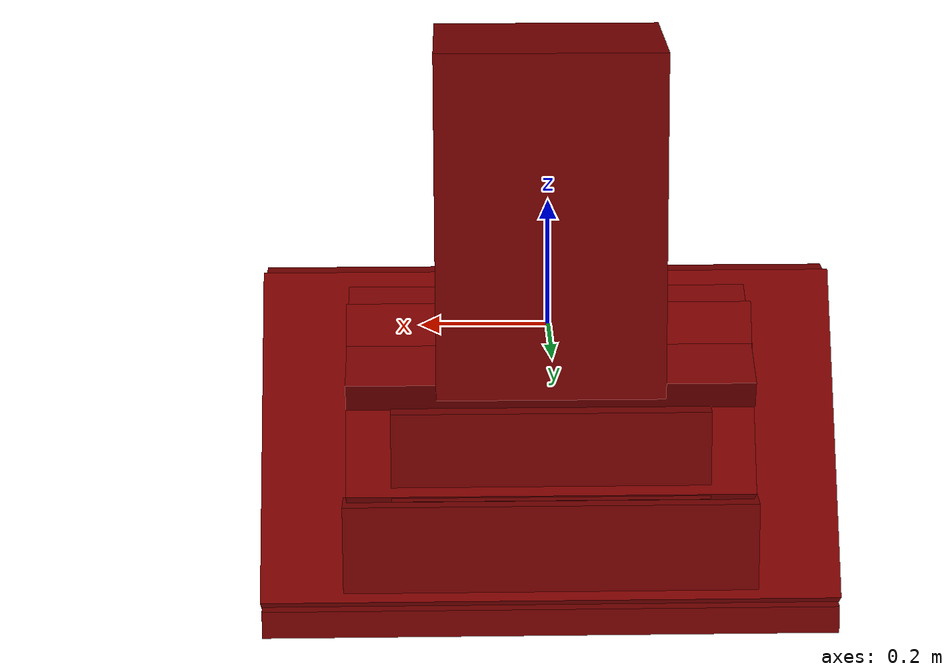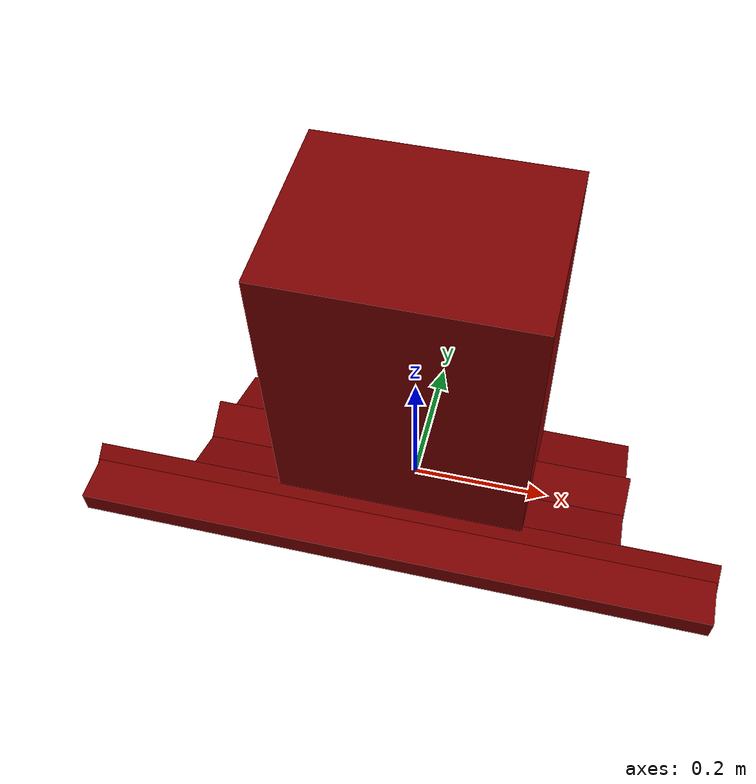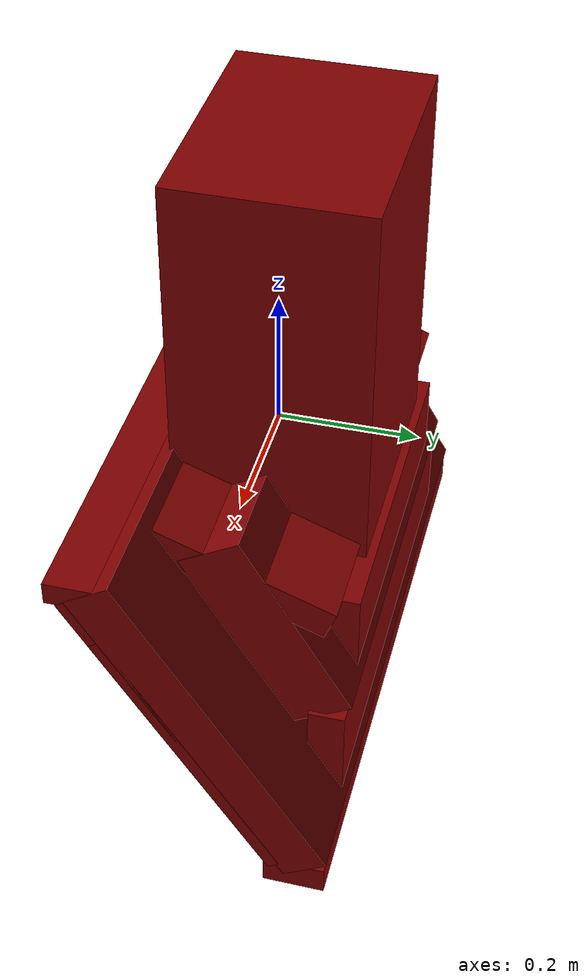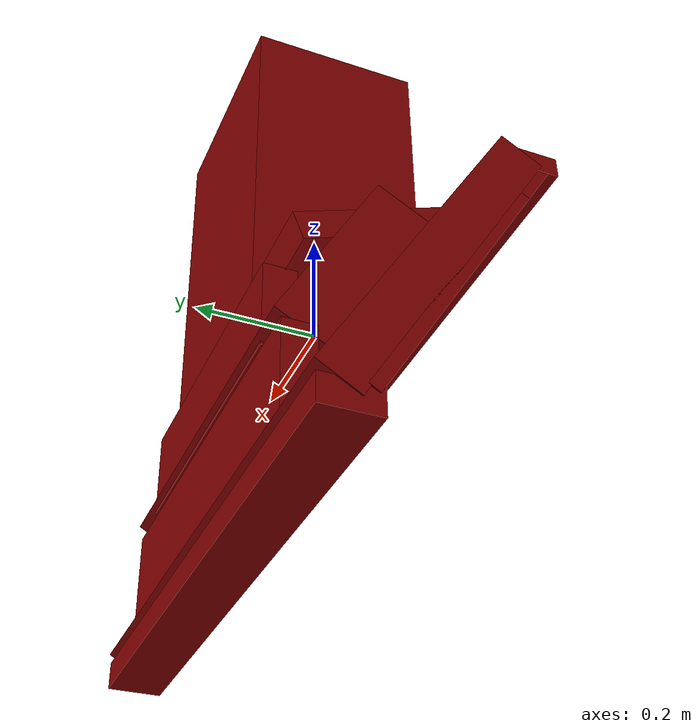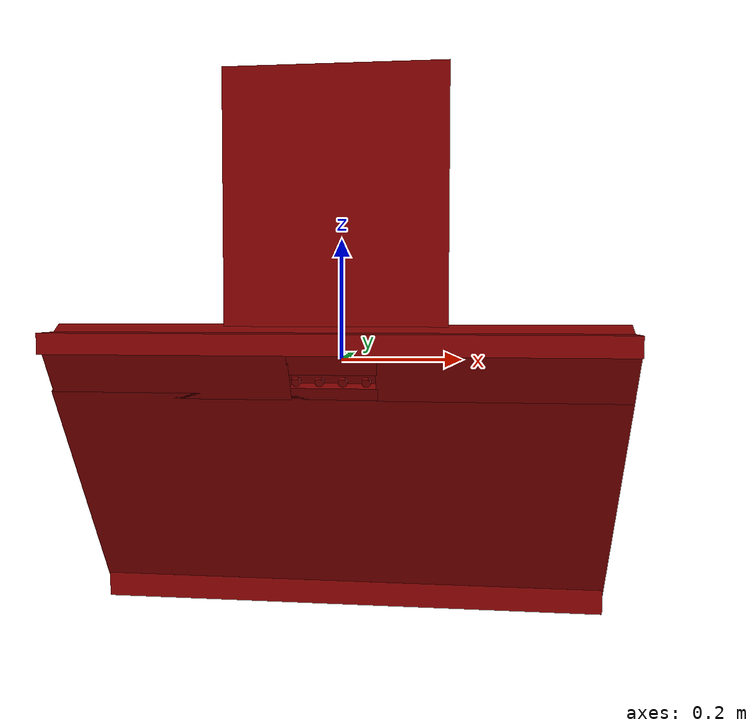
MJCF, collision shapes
<?xml version='1.0' encoding='UTF-8'?>
<mujoco model="model">
  <compiler angle="radian"/>
  <asset>
    <mesh file="visuals/Body001.obj" name="Body001_vis"/>
    <mesh file="visuals/Button001.obj" name="Button001_vis"/>
    <mesh file="visuals/Button002.obj" name="Button002_vis"/>
    <mesh file="visuals/Button003.obj" name="Button003_vis"/>
    <mesh file="visuals/Button004.obj" name="Button004_vis"/>
    <texture file="visuals/T_BC001.png" name="Body001_material" type="2d"/>
    <material name="Body001_material" rgba="1 1 1 1.0" texture="Body001_material" shininess="0.4472135901451111" specular="3"/>
    <texture file="visuals/T_BC001.png" name="Button001_material" type="2d"/>
    <material name="Button001_material" rgba="1 1 1 1.0" texture="Button001_material" shininess="0.4472135901451111" specular="0.3103448502657381"/>
    <texture file="visuals/T_BC001.png" name="Button002_material" type="2d"/>
    <material name="Button002_material" rgba="1 1 1 1.0" texture="Button002_material" shininess="0.4472135901451111" specular="0.3103448502657381"/>
    <texture file="visuals/T_BC001.png" name="Button003_material" type="2d"/>
    <material name="Button003_material" rgba="1 1 1 1.0" texture="Button003_material" shininess="0.4472135901451111" specular="0.3103448502657381"/>
    <texture file="visuals/T_BC001.png" name="Button004_material" type="2d"/>
    <material name="Button004_material" rgba="1 1 1 1.0" texture="Button004_material" shininess="0.4472135901451111" specular="0.3103448502657381"/>
  </asset>
  <default>
    <default class="visual">
      <geom conaffinity="0" contype="0" group="1" type="mesh"/>
    </default>
    <default class="collision">
      <geom group="0" rgba="0.5 0 0 0.5"/>
    </default>
    <default class="spawn">
      <geom group="0" rgba="1 1 1 0.5" contype="0" conaffinity="0"/>
      <site group="0" rgba="1 1 1 0.5"/>
    </default>
    <default class="region">
      <geom group="1" conaffinity="0" contype="0" rgba="0 1 0 0"/>
    </default>
  </default>
  <worldbody>
    <body>
      <body name="object">
        <geom mesh="Body001_vis" type="mesh" solimp="0.998 0.998 0.001" solref="0.001 1" density="100" friction="0.95 0.3 0.1" class="visual" material="Body001_material"/>
        <geom class="collision" type="box" pos="-5.93418246479909e-17 0.03151153773069382 0.19332821667194366" size="0.176690474152565 0.13624289631843567 0.26880136132240295" quat="1.0 0.0 0.0 0.0"/>
        <geom class="collision" type="box" pos="-1.4352711240406062e-16 0.012289568781852722 -0.18580864369869232" size="0.45237573981285095 0.03505275025963783 0.26880133152008057" quat="0.9622051119804382 0.2723257839679718 6.046847772951262e-17 2.4051126544262927e-24"/>
        <geom class="collision" type="box" pos="-2.4755229406499022e-17 -0.14540709555149078 0.032627254724502563" size="0.4505537450313568 0.03928837552666664 0.016232356429100037" quat="1.0 0.0 0.0 0.0"/>
        <geom class="collision" type="box" pos="7.876066376872657e-17 0.1371912807226181 -0.4335668981075287" size="0.4505537450313568 0.043209318071603775 0.02168448269367218" quat="1.0 0.0 0.0 0.0"/>
        <geom class="collision" type="box" pos="3.6544422563564036e-17 0.15029743313789368 -0.31398478150367737" size="0.3235146701335907 0.02581067383289337 0.07011168450117111" quat="1.0 0.0 0.0 0.0"/>
        <geom class="collision" type="box" pos="1.907924673769693e-17 0.01750720664858818 -0.023787058889865875" size="0.3159329295158386 0.14306649565696716 0.023090658709406853" quat="0.9833680391311646 -0.18162398040294647 4.032861835603898e-17 4.285841066159591e-24"/>
        <geom class="collision" type="box" pos="-1.3366230200254103e-16 -0.006913531571626663 -0.23023578524589539" size="0.45237573981285095 0.00919825304299593 0.22159917652606964" quat="0.9622051119804382 0.2723257839679718 6.046847772951262e-17 2.4051126544262927e-24"/>
        <geom class="collision" type="box" pos="3.6544422563564036e-17 0.15029743313789368 -0.16468895971775055" size="0.24695998430252075 0.02581067383289337 0.07011168450117111" quat="1.0 0.0 0.0 0.0"/>
        <geom class="collision" type="box" pos="4.5214678281438656e-17 0.0650784969329834 -0.11487872898578644" size="0.31697890162467957 0.047649867832660675 0.15433849394321442" quat="0.9659258127212524 0.2588191032409668 5.746938552619136e-17 -2.406693728895582e-24"/>
        <geom class="collision" type="box" pos="-0.25682392716407776 -0.13952259719371796 -0.014728546142578125" size="0.19241711497306824 0.009198252111673355 0.04253089800477028" quat="0.9622051119804382 0.2723257839679718 6.046847772951262e-17 2.4051126544262927e-24"/>
        <geom class="collision" type="box" pos="0.2598109543323517 -0.13952259719371796 -0.014728546142578125" size="0.19241711497306824 0.009198252111673355 0.04253089800477028" quat="0.9622051119804382 0.2723257839679718 6.046847772951262e-17 2.4051126544262927e-24"/>
        <geom class="collision" type="box" pos="0.0016868007369339466 -0.1521025151014328 0.005715498235076666" size="0.0680648609995842 0.009198252111673355 0.01787397637963295" quat="0.9622051119804382 0.2723257839679718 6.046847772951262e-17 2.4051126544262927e-24"/>
        <geom class="collision" type="box" pos="0.0016868007369339466 -0.1236455887556076 -0.04053075984120369" size="0.0680648609995842 0.00919825118035078 0.01106310822069645" quat="0.9622051119804382 0.2723257839679718 6.046847772951262e-17 2.4051126544262927e-24"/>
        <body name="Button001">
          <joint axis="-2.9748352972942664e-17 0.8660253286361694 0.5000001192092896" pos="-0.05396651849150658 -0.14378201961517334 -0.025446580722928047" limited="true" name="Button001_joint" range="0.0 0.005" type="slide" damping="1" frictionloss="1" armature=".01" stiffness="0.05"/>
          <geom mesh="Button001_vis" type="mesh" solimp="0.998 0.998 0.001" solref="0.001 1" density="100" friction="0.95 0.3 0.1" class="visual" material="Button001_material"/>
          <geom class="collision" type="cylinder" pos="-0.053966522216796875 -0.14378196001052856 -0.025446653366088867" size="0.007079710252583027 0.0029501880053430796" quat="0.8660253882408142 -0.5 1.1102230246251565e-16 3.620239677379362e-24"/>
        </body>
        <body name="Button002">
          <joint axis="-2.9748352972942664e-17 0.8660253286361694 0.5000001192092896" pos="-0.018068788573145866 -0.14378347992897034 -0.025447580963373184" limited="true" name="Button002_joint" range="0.0 0.005" type="slide" damping="1" frictionloss="1" armature=".01" stiffness="0.05"/>
          <geom mesh="Button002_vis" type="mesh" solimp="0.998 0.998 0.001" solref="0.001 1" density="100" friction="0.95 0.3 0.1" class="visual" material="Button002_material"/>
          <geom class="collision" type="cylinder" pos="-0.018068790435791016 -0.14378345012664795 -0.025447607040405273" size="0.007079710252583027 0.0029501880053430796" quat="0.8660253882408142 -0.5 1.1102230246251565e-16 3.620239677379362e-24"/>
        </body>
        <body name="Button003">
          <joint axis="-2.9748352972942664e-17 0.8660253286361694 0.5000001192092896" pos="0.017827987670898438 -0.14378559589385986 -0.025448834523558617" limited="true" name="Button003_joint" range="0.0 0.005" type="slide" damping="1" frictionloss="1" armature=".01" stiffness="0.05"/>
          <geom mesh="Button003_vis" type="mesh" solimp="0.998 0.998 0.001" solref="0.001 1" density="100" friction="0.95 0.3 0.1" class="visual" material="Button003_material"/>
          <geom class="collision" type="cylinder" pos="0.017827987670898438 -0.14378559589385986 -0.02544879913330078" size="0.007079710252583027 0.0029501880053430796" quat="0.8660253882408142 -0.5 1.1102230246251565e-16 3.620239677379362e-24"/>
        </body>
        <body name="Button004">
          <joint axis="2.974833312060796e-17 0.8660253882408142 0.5" pos="0.053725242614746094 -0.1437855362892151 -0.025450706481933594" limited="true" name="Button004_joint" range="0.0 0.005" type="slide" damping="1" frictionloss="1" armature=".01" stiffness="0.05"/>
          <geom mesh="Button004_vis" type="mesh" solimp="0.998 0.998 0.001" solref="0.001 1" density="100" friction="0.95 0.3 0.1" class="visual" material="Button004_material"/>
          <geom class="collision" type="cylinder" pos="0.053725242614746094 -0.1437872052192688 -0.025449754670262337" size="0.007079710252583027 0.0029501880053430796" quat="0.8660253882408142 -0.5 1.1102230246251565e-16 3.620239677379362e-24"/>
        </body>
        <geom class="region" name="reg_main" type="box" pos="-7.450580596923828e-09 0.0 0.0" size="0.4507678151130676 0.18409746885299683 0.4557133913040161"/>
      </body>
    </body>
  </worldbody>
  <actuator>
    <motor name="Button001_joint_actuator" joint="Button001_joint" gear="0.5"/>
    <motor name="Button002_joint_actuator" joint="Button002_joint" gear="0.5"/>
    <motor name="Button003_joint_actuator" joint="Button003_joint" gear="0.5"/>
    <motor name="Button004_joint_actuator" joint="Button004_joint" gear="0.5"/>
  </actuator>
</mujoco>
